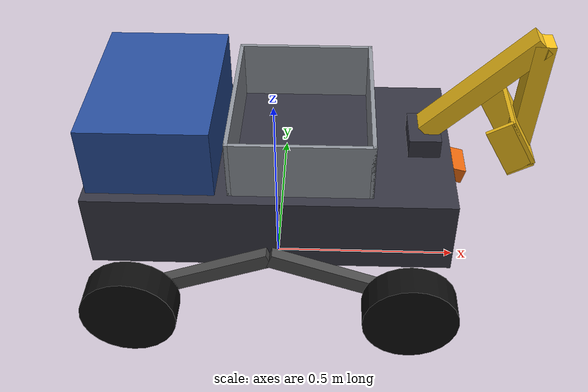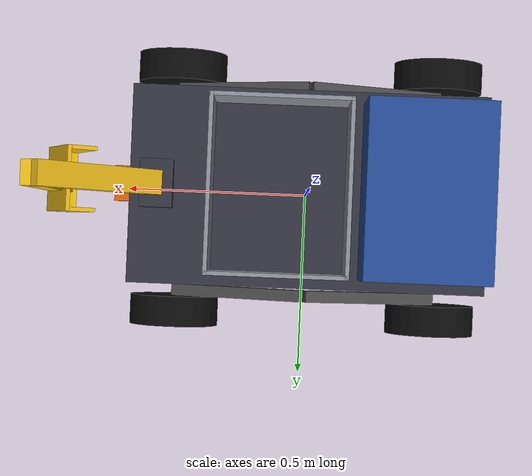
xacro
<?xml version="1.0"?>
<robot name="cac_rover" xmlns:xacro="http://www.ros.org/wiki/xacro">
  <xacro:include filename="rover_properties.xacro"/>
  <xacro:include filename="rover_macros.xacro"/>
  <xacro:include filename="chassis.xacro"/>
  <xacro:include filename="wheels.xacro"/>
  <xacro:include filename="suspension.xacro"/>
  <xacro:include filename="arm.xacro"/>
  <xacro:include filename="sensors.xacro"/>
  <xacro:include filename="gazebo_plugins.xacro"/>

  <xacro:rover_chassis/>
  <xacro:rocker side="left" y_sign="1"/>
  <xacro:rocker side="right" y_sign="-1"/>
  <xacro:excavator_arm parent="base_link"/>

  <xacro:lidar       parent="base_link" xyz="${lidar_mount_xyz}"  rpy="${lidar_mount_rpy}"/>
  <xacro:imu         parent="base_link" xyz="${imu_mount_xyz}"    rpy="${imu_mount_rpy}"/>
  <xacro:rgbd_camera parent="base_link" xyz="${camera_mount_xyz}" rpy="${camera_mount_rpy}"/>

  <xacro:skid_steer_drive left_front="front_left_wheel_joint"   left_rear="rear_left_wheel_joint"
                          right_front="front_right_wheel_joint" right_rear="rear_right_wheel_joint"/>
  <xacro:joint_state_publisher/>
  <xacro:arm_joint_controller joint="boom_joint" p="400" i="40" d="20"/>
  <xacro:arm_joint_controller joint="stick_joint" p="250" i="25" d="12"/>
  <xacro:arm_joint_controller joint="bucket_joint" p="150" i="50" d="5"/>
</robot>

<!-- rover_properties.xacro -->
<robot xmlns:xacro="http://www.ros.org/wiki/xacro">

  <!-- ============================= WHEELS ============================= -->
  <xacro:property name="wheel_radius" value="0.12"/>
  <xacro:property name="wheel_thickness" value="0.08"/>
  <xacro:property name="wheel_mass" value="2.0"/>
  <!-- half the left-right wheel separation (track = 0.66 m) -->
  <xacro:property name="wheel_y_offset" value="0.33"/>
  <!-- half the wheelbase (0.70 m). A wheelbase close to the track keeps the
       sideways tyre scrub needed to skid-steer small. -->
  <xacro:property name="wheel_x_offset" value="0.35"/>
  <xacro:property name="wheel_mu_lateral" value="0.3"/>
  <xacro:property name="wheel_mu_longitudinal" value="1.0"/>
  <xacro:property name="wheel_slip_lateral" value="0.003"/>

  <!-- ============================= CHASSIS ============================= -->
  <xacro:property name="chassis_length" value="0.90"/>
  <xacro:property name="chassis_width" value="0.50"/>
  <xacro:property name="chassis_height" value="0.20"/>
  <xacro:property name="chassis_clearance" value="0.20"/>   <!-- underside above ground -->
  <xacro:property name="chassis_mass" value="26.0"/>
  <xacro:property name="base_z" value="${chassis_clearance + chassis_height/2.0}"/>

  <!-- Top compartments (on the chassis deck, x ranges along the chassis):
       front: arm mount | middle: open-top sand bin | rear: enclosed electronics -->
  <xacro:property name="bin_x_min" value="-0.10"/>
  <xacro:property name="bin_x_max" value="0.25"/>
  <xacro:property name="bin_width" value="0.44"/>
  <xacro:property name="bin_height" value="0.15"/>
  <xacro:property name="bin_wall" value="0.01"/>
  <xacro:property name="bin_mass" value="2.0"/>
  <xacro:property name="elec_x_min" value="-0.44"/>
  <xacro:property name="elec_x_max" value="-0.13"/>
  <xacro:property name="elec_width" value="0.44"/>
  <xacro:property name="elec_height" value="0.18"/>
  <xacro:property name="elec_mass" value="6.0"/>

  <xacro:property name="rocker_y" value="0.275"/>          <!-- pivot / beam centre, from centreline -->
  <xacro:property name="rocker_pivot_z" value="0.25"/>     <!-- pivot height above ground -->
  <xacro:property name="rocker_mass" value="1.5"/>
  <xacro:property name="rocker_limit" value="0.30"/>       <!-- rad, each way -->
  <xacro:property name="rocker_spring" value="300.0"/>     <!-- N m/rad, centring spring -->
  <xacro:property name="rocker_damping" value="15.0"/>     <!-- N m s/rad -->

  <xacro:property name="arm_pivot_x" value="0.38"/>        <!-- boom pivot, from base_link -->
  <xacro:property name="arm_pivot_z" value="0.15"/>        <!-- above base_link (0.45 m above ground) -->
  <xacro:property name="boom_length" value="0.36"/>
  <xacro:property name="boom_mass" value="2.0"/>
  <xacro:property name="boom_stow_pitch" value="-0.7854"/> <!-- 45 deg up -->
  <xacro:property name="stick_length" value="0.32"/>
  <xacro:property name="stick_mass" value="1.5"/>
  <xacro:property name="stick_stow_pitch" value="2.4034"/> <!-- folded back: 138 deg below the boom axis -->
  <xacro:property name="bucket_mass" value="1.0"/>
  <xacro:property name="bucket_stow_pitch" value="2.5832"/> <!-- tucked against the stick -->
  <xacro:property name="arm_link_width" value="0.06"/>
  <xacro:property name="arm_link_height" value="0.05"/>
  <!-- joint limits (rad) and actuator limits -->
  <xacro:property name="boom_lower" value="-0.20"/>
  <xacro:property name="boom_upper" value="1.30"/>
  <xacro:property name="stick_lower" value="-2.00"/>
  <xacro:property name="stick_upper" value="0.05"/>
  <xacro:property name="bucket_lower" value="-0.10"/>
  <xacro:property name="bucket_upper" value="3.20"/>
  <xacro:property name="arm_effort" value="120.0"/>
  <xacro:property name="arm_velocity" value="1.0"/>        <!-- rad/s -->

  <!-- ========================= SENSOR MOUNT POSES =========================
       Parent is base_link for all three. -->
  <!-- LiDAR scan plane 0.10 m above ground: below the shortest (most buried)
       boulder top (~0.18 m), hung under the chassis between the rockers. -->
  <xacro:property name="lidar_mount_xyz" value="0 0 ${0.10 - base_z}"/>
  <xacro:property name="lidar_mount_rpy" value="0 0 0"/>
  <xacro:property name="imu_mount_xyz" value="0 0 0"/>
  <xacro:property name="imu_mount_rpy" value="0 0 0"/>
  <xacro:property name="camera_mount_xyz" value="${chassis_length/2.0 + 0.02} 0 0.03"/>
  <xacro:property name="camera_mount_rpy" value="0 0.26 0"/>

  <!-- ============================= MATERIALS ============================= -->
  <material name="chassis_grey"><color rgba="0.2 0.2 0.25 1"/></material>
  <material name="wheel_black"><color rgba="0.05 0.05 0.05 1"/></material>
  <material name="sensor_orange"><color rgba="0.9 0.4 0.05 1"/></material>
  <material name="bin_steel"><color rgba="0.55 0.57 0.6 1"/></material>
  <material name="electronics_blue"><color rgba="0.15 0.3 0.6 1"/></material>
  <material name="arm_yellow"><color rgba="0.95 0.75 0.1 1"/></material>
  <material name="rocker_dark"><color rgba="0.3 0.3 0.3 1"/></material>

  <xacro:property name="self_filter_flags" value="0xFFFFFFFE"/>  <!-- all bits except bit 0 -->
  <xacro:property name="lidar_visibility_mask" value="0x00000001"/>  <!-- only bit 0 -->
</robot>

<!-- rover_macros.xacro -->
<!-- Small reusable macros shared by the rover component files. -->
<robot xmlns:xacro="http://www.ros.org/wiki/xacro">

  <!-- Uniform-density solid box, origin at its center; x/y/z are full side lengths. -->
  <xacro:macro name="box_inertial" params="mass x y z">
    <inertial>
      <mass value="${mass}"/>
      <inertia
        ixx="${mass/12.0*(y*y+z*z)}" ixy="0" ixz="0"
        iyy="${mass/12.0*(x*x+z*z)}" iyz="0"
        izz="${mass/12.0*(x*x+y*y)}"/>
    </inertial>
  </xacro:macro>

  <xacro:macro name="cylinder_inertial" params="mass radius length rpy:='0 0 0'">
    <inertial>
      <origin xyz="0 0 0" rpy="${rpy}"/>
      <mass value="${mass}"/>
      <inertia
        ixx="${mass/12.0*(3*radius*radius+length*length)}" ixy="0" ixz="0"
        iyy="${mass/12.0*(3*radius*radius+length*length)}" iyz="0"
        izz="${mass/2.0*radius*radius}"/>
    </inertial>
  </xacro:macro>

  <!-- Hide a rover link's visual(s) from the LiDAR only. See "LIDAR
       SELF-DETECTION FILTER" in rover_properties.xacro. -->
  <xacro:macro name="lidar_self_filter" params="link">
    <gazebo reference="${link}">
      <visual>
        <visibility_flags>${self_filter_flags}</visibility_flags>
      </visual>
    </gazebo>
  </xacro:macro>

  <xacro:macro name="keep_fixed_joint" params="joint">
    <gazebo reference="${joint}">
      <disableFixedJointLumping>true</disableFixedJointLumping>
    </gazebo>
  </xacro:macro>

</robot>

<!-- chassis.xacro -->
<robot xmlns:xacro="http://www.ros.org/wiki/xacro">

  <!-- Thin box (visual + collision) inside a link, positioned in that link's frame. -->
  <xacro:macro name="panel" params="name xyz size material">
    <visual>
      <origin xyz="${xyz}"/>
      <geometry><box size="${size}"/></geometry>
      <material name="${material}"/>
    </visual>
    <collision name="${name}">
      <origin xyz="${xyz}"/>
      <geometry><box size="${size}"/></geometry>
    </collision>
  </xacro:macro>

  <xacro:macro name="rover_chassis">
    <link name="base_footprint"/>
    <joint name="base_footprint_joint" type="fixed">
      <parent link="base_footprint"/>
      <child link="base_link"/>
      <origin xyz="0 0 ${base_z}" rpy="0 0 0"/>
    </joint>
    <link name="base_link">
      <visual>
        <geometry><box size="${chassis_length} ${chassis_width} ${chassis_height}"/></geometry>
        <material name="chassis_grey"/>
      </visual>
      <collision>
        <geometry><box size="${chassis_length} ${chassis_width} ${chassis_height}"/></geometry>
      </collision>
      <xacro:box_inertial mass="${chassis_mass}" x="${chassis_length}" y="${chassis_width}" z="${chassis_height}"/>
    </link>
    <xacro:lidar_self_filter link="base_link"/>

    <!-- Open-top sand bin: floor is the chassis deck; four walls. -->
    <xacro:property name="deck" value="${chassis_height/2.0}"/>
    <xacro:property name="bin_len" value="${bin_x_max - bin_x_min}"/>
    <link name="bin_link">
      <xacro:panel name="wall_front" xyz="${bin_len/2.0 - bin_wall/2.0} 0 ${bin_height/2.0}"
                   size="${bin_wall} ${bin_width} ${bin_height}" material="bin_steel"/>
      <xacro:panel name="wall_rear" xyz="${-bin_len/2.0 + bin_wall/2.0} 0 ${bin_height/2.0}"
                   size="${bin_wall} ${bin_width} ${bin_height}" material="bin_steel"/>
      <xacro:panel name="wall_left" xyz="0 ${bin_width/2.0 - bin_wall/2.0} ${bin_height/2.0}"
                   size="${bin_len} ${bin_wall} ${bin_height}" material="bin_steel"/>
      <xacro:panel name="wall_right" xyz="0 ${-bin_width/2.0 + bin_wall/2.0} ${bin_height/2.0}"
                   size="${bin_len} ${bin_wall} ${bin_height}" material="bin_steel"/>
      <!-- thin-walled box: inertia of the bounding box at the bin's mass is a
           fine approximation for a 2 kg part -->
      <inertial>
        <origin xyz="0 0 ${bin_height/2.0}"/>
        <mass value="${bin_mass}"/>
        <inertia ixx="${bin_mass/12.0*(bin_width*bin_width + bin_height*bin_height)}" ixy="0" ixz="0"
                 iyy="${bin_mass/12.0*(bin_len*bin_len + bin_height*bin_height)}" iyz="0"
                 izz="${bin_mass/12.0*(bin_len*bin_len + bin_width*bin_width)}"/>
      </inertial>
    </link>
    <joint name="bin_joint" type="fixed">
      <parent link="base_link"/>
      <child link="bin_link"/>
      <origin xyz="${(bin_x_min + bin_x_max)/2.0} 0 ${deck}"/>
    </joint>

    <!-- Enclosed electronics compartment (battery, compute, E-stop wiring). -->
    <xacro:property name="elec_len" value="${elec_x_max - elec_x_min}"/>
    <link name="electronics_link">
      <visual>
        <origin xyz="0 0 ${elec_height/2.0}"/>
        <geometry><box size="${elec_len} ${elec_width} ${elec_height}"/></geometry>
        <material name="electronics_blue"/>
      </visual>
      <collision>
        <origin xyz="0 0 ${elec_height/2.0}"/>
        <geometry><box size="${elec_len} ${elec_width} ${elec_height}"/></geometry>
      </collision>
      <inertial>
        <origin xyz="0 0 ${elec_height/2.0}"/>
        <mass value="${elec_mass}"/>
        <inertia ixx="${elec_mass/12.0*(elec_width*elec_width + elec_height*elec_height)}" ixy="0" ixz="0"
                 iyy="${elec_mass/12.0*(elec_len*elec_len + elec_height*elec_height)}" iyz="0"
                 izz="${elec_mass/12.0*(elec_len*elec_len + elec_width*elec_width)}"/>
      </inertial>
    </link>
    <joint name="electronics_joint" type="fixed">
      <parent link="base_link"/>
      <child link="electronics_link"/>
      <origin xyz="${(elec_x_min + elec_x_max)/2.0} 0 ${deck}"/>
    </joint>
  </xacro:macro>
</robot>

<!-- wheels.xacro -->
<robot xmlns:xacro="http://www.ros.org/wiki/xacro">

  <xacro:macro name="wheel" params="prefix parent xyz">
    <link name="${prefix}_wheel_link">
      <visual>
        <origin xyz="0 0 0" rpy="1.5708 0 0"/>
        <geometry><cylinder radius="${wheel_radius}" length="${wheel_thickness}"/></geometry>
        <material name="wheel_black"/>
      </visual>
      <collision>
        <origin xyz="0 0 0" rpy="1.5708 0 0"/>
        <geometry><cylinder radius="${wheel_radius}" length="${wheel_thickness}"/></geometry>
      </collision>
      <xacro:cylinder_inertial mass="${wheel_mass}" radius="${wheel_radius}" length="${wheel_thickness}"
                               rpy="1.5708 0 0"/>
    </link>
    <joint name="${prefix}_wheel_joint" type="continuous">
      <parent link="${parent}"/>
      <child link="${prefix}_wheel_link"/>
      <origin xyz="${xyz}" rpy="0 0 0"/>
      <axis xyz="0 1 0"/>
    </joint>
    <!-- The wheels span 0-0.24 m and cut the 0.10 m LiDAR plane. -->
    <xacro:lidar_self_filter link="${prefix}_wheel_link"/>
    <gazebo reference="${prefix}_wheel_link">
      <collision>
        <surface>
          <friction>
            <ode>
              <mu>${wheel_mu_lateral}</mu>
              <mu2>${wheel_mu_longitudinal}</mu2>
              <fdir1>0 0 1</fdir1>
              <slip1>${wheel_slip_lateral}</slip1>
              <slip2>0.0</slip2>
            </ode>
          </friction>
        </surface>
      </collision>
    </gazebo>
  </xacro:macro>

</robot>

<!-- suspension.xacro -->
<robot xmlns:xacro="http://www.ros.org/wiki/xacro">

  <!-- side: 'left' (+y) or 'right' (-y) -->
  <xacro:macro name="rocker" params="side y_sign">
    <xacro:property name="arm_drop" value="${rocker_pivot_z - wheel_radius}"/>  <!-- pivot above axle -->
    <xacro:property name="arm_len" value="${sqrt(wheel_x_offset*wheel_x_offset + arm_drop*arm_drop)}"/>
    <xacro:property name="arm_angle" value="${atan2(arm_drop, wheel_x_offset)}"/>
    <link name="${side}_rocker_link">
      <!-- two arms from the pivot down to the axles -->
      <visual>
        <origin xyz="${wheel_x_offset/2.0} 0 ${-arm_drop/2.0}" rpy="0 ${arm_angle} 0"/>
        <geometry><box size="${arm_len} 0.03 0.04"/></geometry>
        <material name="rocker_dark"/>
      </visual>
      <visual>
        <origin xyz="${-wheel_x_offset/2.0} 0 ${-arm_drop/2.0}" rpy="0 ${-arm_angle} 0"/>
        <geometry><box size="${arm_len} 0.03 0.04"/></geometry>
        <material name="rocker_dark"/>
      </visual>
      <collision name="arm_front">
        <origin xyz="${wheel_x_offset/2.0} 0 ${-arm_drop/2.0}" rpy="0 ${arm_angle} 0"/>
        <geometry><box size="${arm_len} 0.03 0.04"/></geometry>
      </collision>
      <collision name="arm_rear">
        <origin xyz="${-wheel_x_offset/2.0} 0 ${-arm_drop/2.0}" rpy="0 ${-arm_angle} 0"/>
        <geometry><box size="${arm_len} 0.03 0.04"/></geometry>
      </collision>
      <inertial>
        <origin xyz="0 0 ${-arm_drop/2.0}"/>
        <mass value="${rocker_mass}"/>
        <inertia ixx="${rocker_mass/12.0*(0.03*0.03 + arm_drop*arm_drop)}" ixy="0" ixz="0"
                 iyy="${rocker_mass/12.0*(4*wheel_x_offset*wheel_x_offset + arm_drop*arm_drop)}" iyz="0"
                 izz="${rocker_mass/12.0*(4*wheel_x_offset*wheel_x_offset + 0.03*0.03)}"/>
      </inertial>
    </link>
    <joint name="${side}_rocker_joint" type="revolute">
      <parent link="base_link"/>
      <child link="${side}_rocker_link"/>
      <origin xyz="0 ${y_sign*rocker_y} ${rocker_pivot_z - base_z}" rpy="0 0 0"/>
      <axis xyz="0 1 0"/>
      <limit lower="${-rocker_limit}" upper="${rocker_limit}" effort="1000" velocity="5.0"/>
      <dynamics damping="${rocker_damping}" friction="0.0"/>
    </joint>
    <gazebo reference="${side}_rocker_joint">
      <springReference>0.0</springReference>
      <springStiffness>${rocker_spring}</springStiffness>
    </gazebo>
    <!-- the rocker arms pass through the 0.10 m LiDAR plane near the axles -->
    <xacro:lidar_self_filter link="${side}_rocker_link"/>

    <xacro:property name="wheel_dy" value="${y_sign*(wheel_y_offset - rocker_y)}"/>
    <xacro:wheel prefix="front_${side}" parent="${side}_rocker_link" xyz="${wheel_x_offset} ${wheel_dy} ${-arm_drop}"/>
    <xacro:wheel prefix="rear_${side}" parent="${side}_rocker_link" xyz="${-wheel_x_offset} ${wheel_dy} ${-arm_drop}"/>
  </xacro:macro>

</robot>

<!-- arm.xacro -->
<robot xmlns:xacro="http://www.ros.org/wiki/xacro">

  <xacro:macro name="arm_box_link" params="name length mass">
    <link name="${name}">
      <visual>
        <origin xyz="${length/2.0} 0 0"/>
        <geometry><box size="${length} ${arm_link_width} ${arm_link_height}"/></geometry>
        <material name="arm_yellow"/>
      </visual>
      <collision>
        <origin xyz="${length/2.0} 0 0"/>
        <geometry><box size="${length} ${arm_link_width} ${arm_link_height}"/></geometry>
      </collision>
      <inertial>
        <origin xyz="${length/2.0} 0 0"/>
        <mass value="${mass}"/>
        <inertia ixx="${mass/12.0*(arm_link_width*arm_link_width + arm_link_height*arm_link_height)}" ixy="0" ixz="0"
                 iyy="${mass/12.0*(length*length + arm_link_height*arm_link_height)}" iyz="0"
                 izz="${mass/12.0*(length*length + arm_link_width*arm_link_width)}"/>
      </inertial>
    </link>
  </xacro:macro>

  <xacro:macro name="excavator_arm" params="parent">
    <!-- Mount bracket on the chassis deck (fixed, part of the chassis). -->
    <link name="arm_mount_link">
      <visual>
        <origin xyz="0 0 ${-(arm_pivot_z - chassis_height/2.0)/2.0}"/>
        <geometry><box size="0.08 0.12 ${arm_pivot_z - chassis_height/2.0}"/></geometry>
        <material name="chassis_grey"/>
      </visual>
      <collision>
        <origin xyz="0 0 ${-(arm_pivot_z - chassis_height/2.0)/2.0}"/>
        <geometry><box size="0.08 0.12 ${arm_pivot_z - chassis_height/2.0}"/></geometry>
      </collision>
      <xacro:box_inertial mass="0.5" x="0.08" y="0.12" z="${arm_pivot_z - chassis_height/2.0}"/>
    </link>
    <joint name="arm_mount_joint" type="fixed">
      <parent link="${parent}"/>
      <child link="arm_mount_link"/>
      <origin xyz="${arm_pivot_x} 0 ${arm_pivot_z}"/>
    </joint>

    <xacro:arm_box_link name="boom_link" length="${boom_length}" mass="${boom_mass}"/>
    <joint name="boom_joint" type="revolute">
      <parent link="arm_mount_link"/>
      <child link="boom_link"/>
      <origin xyz="0 0 0" rpy="0 ${boom_stow_pitch} 0"/>
      <axis xyz="0 1 0"/>
      <limit lower="${boom_lower}" upper="${boom_upper}" effort="${arm_effort}" velocity="${arm_velocity}"/>
      <dynamics damping="2.0" friction="0.0"/>
    </joint>

    <xacro:arm_box_link name="stick_link" length="${stick_length}" mass="${stick_mass}"/>
    <joint name="stick_joint" type="revolute">
      <parent link="boom_link"/>
      <child link="stick_link"/>
      <origin xyz="${boom_length} 0 0" rpy="0 ${stick_stow_pitch} 0"/>
      <axis xyz="0 1 0"/>
      <limit lower="${stick_lower}" upper="${stick_upper}" effort="${arm_effort}" velocity="${arm_velocity}"/>
      <dynamics damping="1.5" friction="0.0"/>
    </joint>

    <!-- Bucket: open box (floor + back + two sides) hinged at the stick tip.
         Bucket +x points from the hinge to the cutting lip. -->
    <link name="bucket_link">
      <visual>
        <origin xyz="0.07 0 -0.035"/>
        <geometry><box size="0.14 0.16 0.01"/></geometry>
        <material name="arm_yellow"/>
      </visual>
      <visual>
        <origin xyz="0.0 0 0"/>
        <geometry><box size="0.01 0.16 0.07"/></geometry>
        <material name="arm_yellow"/>
      </visual>
      <visual>
        <origin xyz="0.07 0.075 0"/>
        <geometry><box size="0.14 0.01 0.07"/></geometry>
        <material name="arm_yellow"/>
      </visual>
      <visual>
        <origin xyz="0.07 -0.075 0"/>
        <geometry><box size="0.14 0.01 0.07"/></geometry>
        <material name="arm_yellow"/>
      </visual>
      <!-- one collision box over the whole bucket keeps contacts simple -->
      <collision>
        <origin xyz="0.07 0 0"/>
        <geometry><box size="0.14 0.16 0.07"/></geometry>
      </collision>
      <inertial>
        <origin xyz="0.06 0 -0.01"/>
        <mass value="${bucket_mass}"/>
        <inertia ixx="0.0025" ixy="0" ixz="0" iyy="0.002" iyz="0" izz="0.0035"/>
      </inertial>
    </link>
    <joint name="bucket_joint" type="revolute">
      <parent link="stick_link"/>
      <child link="bucket_link"/>
      <origin xyz="${stick_length} 0 0" rpy="0 ${bucket_stow_pitch} 0"/>
      <axis xyz="0 1 0"/>
      <limit lower="${bucket_lower}" upper="${bucket_upper}" effort="${arm_effort}" velocity="${arm_velocity}"/>
      <dynamics damping="0.5" friction="0.0"/>
    </joint>
    <!-- the bucket reaches the 0.10 m LiDAR plane when digging -->
    <xacro:lidar_self_filter link="boom_link"/>
    <xacro:lidar_self_filter link="stick_link"/>
    <xacro:lidar_self_filter link="bucket_link"/>
  </xacro:macro>
</robot>

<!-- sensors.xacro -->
<robot xmlns:xacro="http://www.ros.org/wiki/xacro">

  <xacro:macro name="lidar" params="parent xyz rpy">
    <link name="lidar_link">
      <visual><geometry><cylinder radius="0.05" length="0.06"/></geometry><material name="sensor_orange"/></visual>
      <collision><geometry><cylinder radius="0.05" length="0.06"/></geometry></collision>
      <inertial><mass value="0.3"/><inertia ixx="0.0003" ixy="0" ixz="0" iyy="0.0003" iyz="0" izz="0.0003"/></inertial>
    </link>
    <joint name="lidar_joint" type="fixed">
      <parent link="${parent}"/>
      <child link="lidar_link"/>
      <origin xyz="${xyz}" rpy="${rpy}"/>
    </joint>
    <xacro:keep_fixed_joint joint="lidar_joint"/>

    <gazebo reference="lidar_link">
      <visual>
        <visibility_flags>${self_filter_flags}</visibility_flags>
      </visual>
      <sensor name="lidar_sensor" type="gpu_lidar">
        <topic>/scan</topic>
        <gz_frame_id>lidar_link</gz_frame_id>
        <update_rate>10</update_rate>
        <always_on>true</always_on>
        <visualize>false</visualize>
        <lidar>
          <scan>
            <!-- 360-degree planar scan: obstacle detection must not depend on
                 boulders/craters being in front of the robot only. -->
            <horizontal>
              <samples>360</samples>
              <resolution>1.0</resolution>
              <min_angle>-3.14159</min_angle>
              <max_angle>3.14159</max_angle>
            </horizontal>
          </scan>
          <range>
            <!-- max range 8m comfortably covers the obstacle zone depth -->
            <min>0.12</min>
            <max>8.0</max>
            <resolution>0.01</resolution>
          </range>
          <noise><type>gaussian</type><mean>0.0</mean><stddev>0.01</stddev></noise>
          <visibility_mask>${lidar_visibility_mask}</visibility_mask>
        </lidar>
      </sensor>
    </gazebo>
  </xacro:macro>

  <!-- IMU: rigidly fixed near the robot's centroid so its readings reflect
       whole-body motion rather than chassis flex/overhang. -->
  <xacro:macro name="imu" params="parent xyz rpy">
    <link name="imu_link">
      <inertial><mass value="0.05"/><inertia ixx="1e-5" ixy="0" ixz="0" iyy="1e-5" iyz="0" izz="1e-5"/></inertial>
    </link>
    <joint name="imu_joint" type="fixed">
      <parent link="${parent}"/>
      <child link="imu_link"/>
      <origin xyz="${xyz}" rpy="${rpy}"/>
    </joint>
    <xacro:keep_fixed_joint joint="imu_joint"/>

    <gazebo reference="imu_link">
      <sensor name="imu_sensor" type="imu">
        <topic>/imu</topic>
        <gz_frame_id>imu_link</gz_frame_id>
        <update_rate>100</update_rate>
        <always_on>true</always_on>
        <imu>
          <angular_velocity>
            <x><noise type="gaussian"><mean>0</mean><stddev>0.003</stddev></noise></x>
            <y><noise type="gaussian"><mean>0</mean><stddev>0.003</stddev></noise></y>
            <z><noise type="gaussian"><mean>0</mean><stddev>0.003</stddev></noise></z>
          </angular_velocity>
          <linear_acceleration>
            <x><noise type="gaussian"><mean>0</mean><stddev>0.03</stddev></noise></x>
            <y><noise type="gaussian"><mean>0</mean><stddev>0.03</stddev></noise></y>
            <z><noise type="gaussian"><mean>0</mean><stddev>0.03</stddev></noise></z>
          </linear_acceleration>
        </imu>
      </sensor>
    </gazebo>
  </xacro:macro>

  <xacro:macro name="rgbd_camera" params="parent xyz rpy">
    <link name="camera_link">
      <visual><geometry><box size="0.04 0.09 0.04"/></geometry><material name="sensor_orange"/></visual>
      <collision><geometry><box size="0.04 0.09 0.04"/></geometry></collision>
      <inertial><mass value="0.2"/><inertia ixx="1e-4" ixy="0" ixz="0" iyy="1e-4" iyz="0" izz="1e-4"/></inertial>
    </link>
    <joint name="camera_joint" type="fixed">
      <parent link="${parent}"/>
      <child link="camera_link"/>
      <origin xyz="${xyz}" rpy="${rpy}"/>
    </joint>
    <xacro:keep_fixed_joint joint="camera_joint"/>
    <!-- Optical frame follows the ROS camera convention (Z forward, X right, Y down) -->
    <link name="camera_optical_link"/>
    <joint name="camera_optical_joint" type="fixed">
      <parent link="camera_link"/>
      <child link="camera_optical_link"/>
      <origin xyz="0 0 0" rpy="${-1.5708} 0 ${-1.5708}"/>
    </joint>

    <gazebo reference="camera_link">
      <sensor name="rgbd_camera" type="rgbd_camera">
        <topic>/camera</topic>
        <gz_frame_id>camera_link</gz_frame_id>
        <update_rate>15</update_rate>
        <always_on>true</always_on>
        <camera>
          <horizontal_fov>1.15</horizontal_fov>
          <image><width>640</width><height>480</height></image>
          <clip><near>0.1</near><far>10.0</far></clip>
        </camera>
      </sensor>
    </gazebo>
  </xacro:macro>

</robot>
